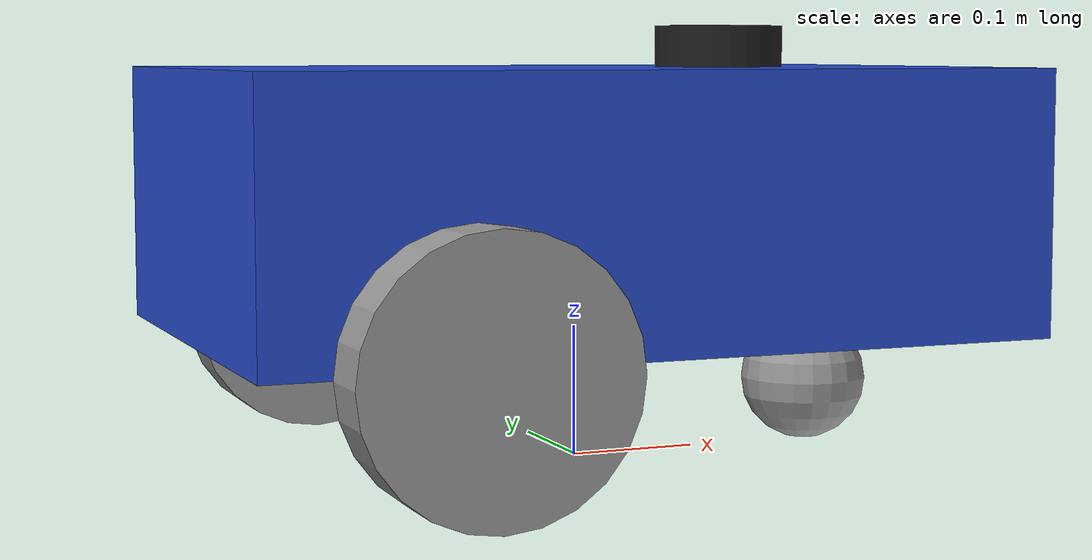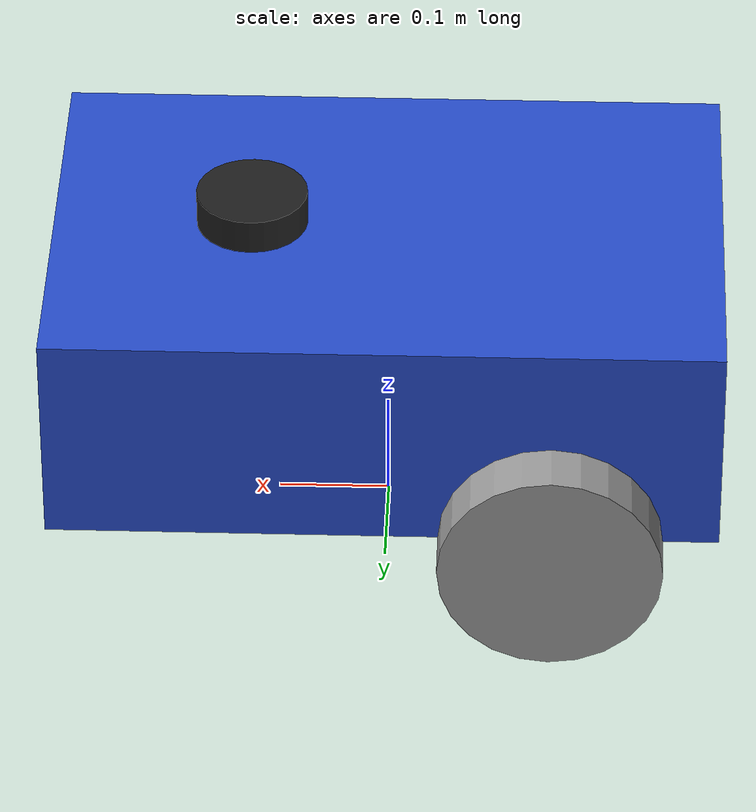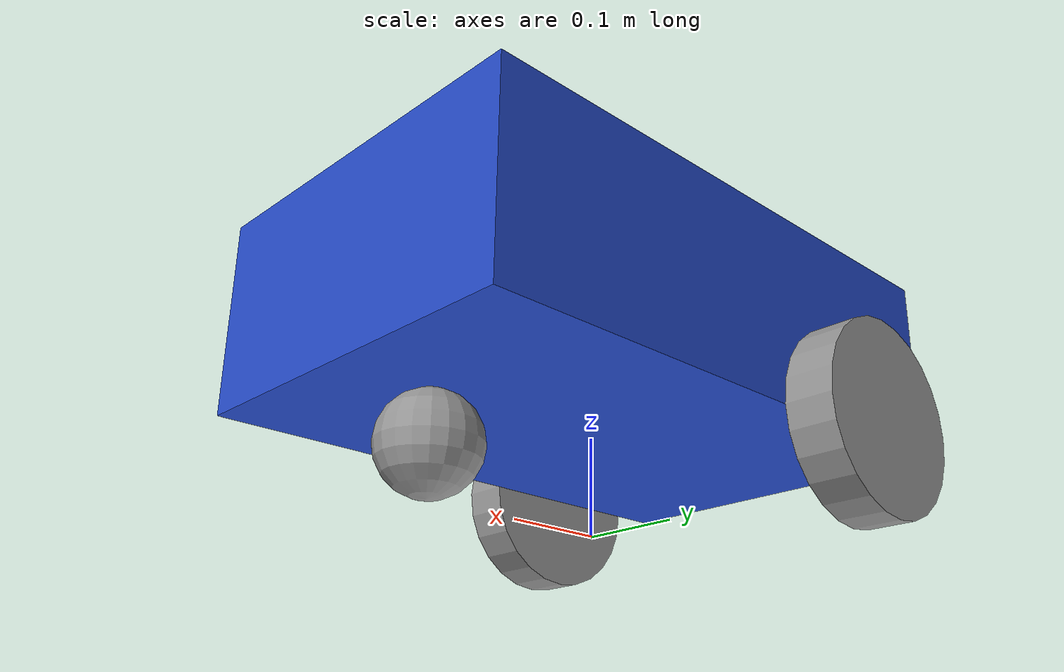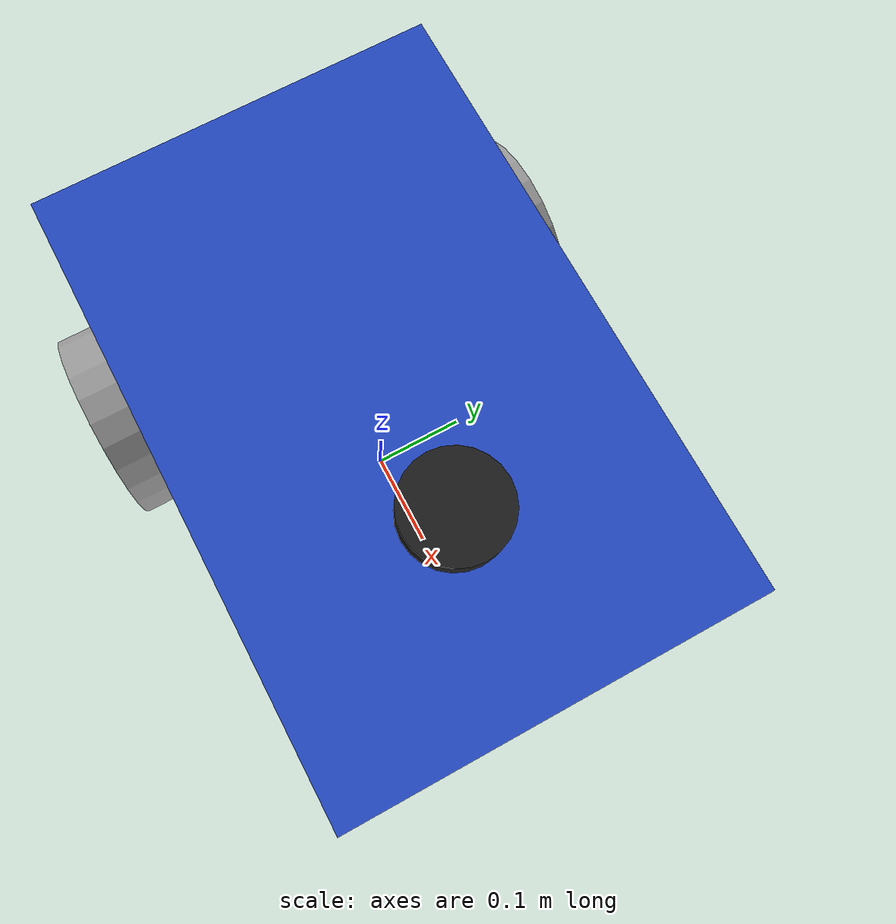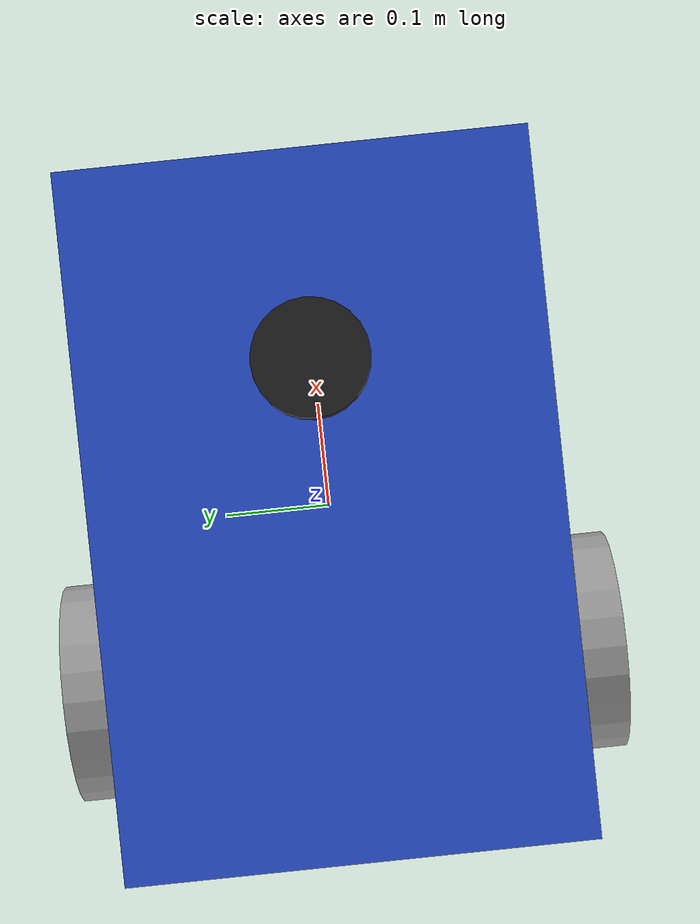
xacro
<?xml version="1.0"?>
<robot name="my_robot" xmlns:xacro="http://www.ros.org/wiki/xacro">

    <!-- ARGUMENTS -->
    <xacro:arg name="use_sim_time" default="false"/>
    <xacro:arg name="is_sim" default="false"/>

    <!-- Convert arguments to properties -->
    <xacro:property name="is_sim" value="$(arg is_sim)"/>

    <!-- COMMON INCLUDES (Always loaded) -->
    <xacro:include filename="common_properties.xacro" />
    <xacro:include filename="mobile_base.xacro" />
    <xacro:include filename="lidar.xacro" />

    <!-- SIMULATION: Use Gazebo Plugins -->
    <xacro:if value="${is_sim}">
        <xacro:include filename="gazebo_control.xacro" />
    </xacro:if>

    <!-- HARDWARE: Use ros2_control -->
    <xacro:unless value="${is_sim}">
        <xacro:include filename="mobile_base.ros2_control.xacro" />
    </xacro:unless>

</robot>

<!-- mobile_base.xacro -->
<robot xmlns:xacro="http://www.ros.org/wiki/xacro">

    <xacro:property name="base_length" value="0.6" />
    <xacro:property name="base_width" value="0.4" />
    <xacro:property name="base_height" value="0.2" />
    <xacro:property name="wheel_radius" value="0.1" />
    <xacro:property name="wheel_length" value="0.05" />

    <link name="base_footprint" />

    <link name="base_link">
        <visual>
            <geometry>
                <box size="${base_length} ${base_width} ${base_height}" />
            </geometry>
            <origin xyz="0 0 ${base_height / 2.0}" rpy="0 0 0" />
            <material name="blue" />
        </visual>
        <collision>
            <geometry>
                <box size="${base_length} ${base_width} ${base_height}" />
            </geometry>
            <origin xyz="0 0 ${base_height / 2.0}" rpy="0 0 0" />
        </collision>
        <inertial>
            <mass value="5.0"/>
            <origin xyz="0 0 ${base_height / 2.0}" rpy="0 0 0"/>
            <inertia ixx="0.1" ixy="0" ixz="0" iyy="0.1" iyz="0" izz="0.1"/>
        </inertial>
    </link>

    <xacro:macro name="wheel_link" params="prefix">
        <link name="${prefix}_wheel_link">
            <visual>
                <geometry>
                    <cylinder radius="${wheel_radius}" length="${wheel_length}" />
                </geometry>
                <origin xyz="0 0 0" rpy="${pi / 2.0} 0 0" />
                <material name="grey" />
            </visual>
            <collision>
                <geometry>
                    <cylinder radius="${wheel_radius}" length="${wheel_length}" />
                </geometry>
                <origin xyz="0 0 0" rpy="${pi / 2.0} 0 0" />
            </collision>
            <inertial>
                <mass value="0.5"/>
                <origin xyz="0 0 0" rpy="0 0 0"/>
                <inertia ixx="0.00125" ixy="0" ixz="0" iyy="0.00125" iyz="0" izz="0.0025"/>
            </inertial>
        </link>
    </xacro:macro>

    <xacro:wheel_link prefix="right" />
    <xacro:wheel_link prefix="left" />

    <link name="caster_wheel_link">
        <visual>
            <geometry>
                <sphere radius="${wheel_radius / 2.0}" />
            </geometry>
            <origin xyz="0 0 0" rpy="0 0 0" />
            <material name="grey" />
        </visual>
        <collision>
            <geometry>
                <sphere radius="${wheel_radius / 2.0}" />
            </geometry>
            <origin xyz="0 0 0" rpy="0 0 0" />
        </collision>
        <inertial>
            <mass value="0.2"/>
            <origin xyz="0 0 0" rpy="0 0 0"/>
            <inertia ixx="0.0002" ixy="0" ixz="0" iyy="0.0002" iyz="0" izz="0.0002"/>
        </inertial>
    </link>

    <joint name="base_joint" type="fixed">
        <parent link="base_footprint" />
        <child link="base_link" />
        <origin xyz="0 0 ${wheel_radius}" rpy="0 0 0"/>
    </joint>

    <joint name="base_right_wheel_joint" type="continuous">
        <parent link="base_link" />
        <child link="right_wheel_link" />
        <origin xyz="${-base_length / 4.0} ${-(base_width + wheel_length) / 2.0} 0" rpy="0 0 0" />
        <axis xyz="0 1 0" />
    </joint>

    <joint name="base_left_wheel_joint" type="continuous">
        <parent link="base_link" />
        <child link="left_wheel_link" />
        <origin xyz="${-base_length / 4.0} ${(base_width + wheel_length) / 2.0} 0" rpy="0 0 0" />
        <axis xyz="0 1 0" />
    </joint>

    <joint name="base_caster_wheel_joint" type="fixed">
        <parent link="base_link" />
        <child link="caster_wheel_link" />
        <origin xyz="${base_length / 3.0} 0 ${-wheel_radius / 2.0}" rpy="0 0 0" />
    </joint>

</robot>

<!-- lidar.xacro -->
<robot xmlns:xacro="http://www.ros.org/wiki/xacro" >

    <joint name="laser_joint" type="fixed">
        <parent link="base_link"/>
        <child link="laser_frame"/>
        <origin xyz="0.122 0 0.212" rpy="0 0 0"/>
    </joint>

    <link name="laser_frame">
        <visual>
            <geometry>
                <cylinder radius="0.05" length="0.04"/>
            </geometry>
            <material name="black"/>
        </visual>
        <visual>
            <origin xyz="0 0 -0.05"/>
            <geometry>
                <cylinder radius="0.01" length="0.1"/>
            </geometry>
            <material name="black"/>
        </visual>
        <collision>
            <geometry>
                <cylinder radius="0.05" length="0.04"/>
            </geometry>
        </collision>

        <!-- Manual inertial instead of xacro macro -->
        <inertial>
            <origin xyz="0 0 0" rpy="0 0 0"/>
            <mass value="0.1"/>
            <inertia ixx="0.000166" ixy="0" ixz="0"
                     iyy="0.000166" iyz="0"
                     izz="0.000125"/>
        </inertial>
    </link>

    <gazebo reference="laser_frame">
        <material>Gazebo/Black</material>

        <sensor name="laser" type="gpu_lidar">
            <pose>0 0 0 0 0 0</pose>
            <topic>scan</topic>
            <frame_id>laser_frame</frame_id>
            <update_rate>10</update_rate>
            <visualize>true</visualize>
            <lidar>
                <scan>
                    <horizontal>
                        <samples>360</samples>
                        <resolution>1</resolution>
                        <min_angle>-3.14159</min_angle>
                        <max_angle>3.14159</max_angle>
                    </horizontal>
                </scan>
                <range>
                    <min>0.3</min>
                    <max>12.0</max>
                    <resolution>0.01</resolution>
                </range>
                <noise>
                    <type>gaussian</type>
                    <mean>0.0</mean>
                    <stddev>0.01</stddev>
                </noise>
            </lidar>

            <!-- ROS2 Bridge Plugin -->
            <plugin filename="libignition-gazebo-sensors-system.so" name="ignition::gazebo::systems::Sensors">
                <render_engine>ogre2</render_engine>
            </plugin>
        </sensor>
    </gazebo>

</robot>
